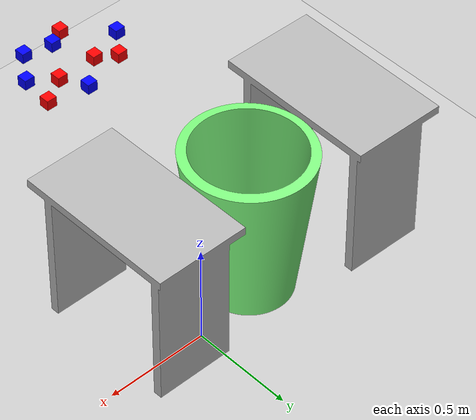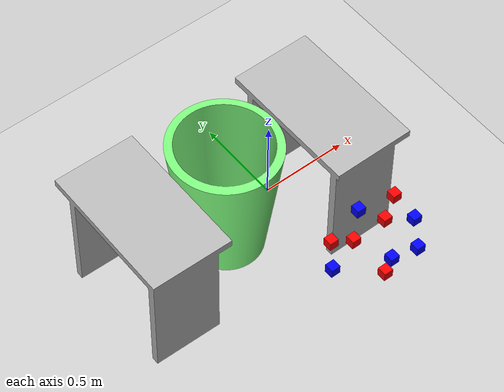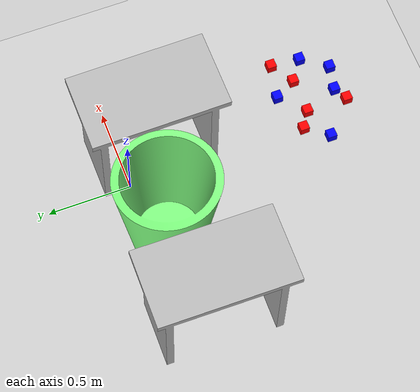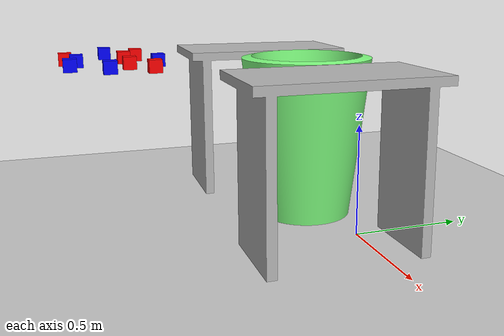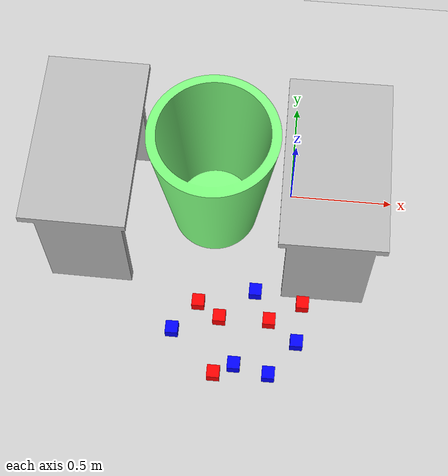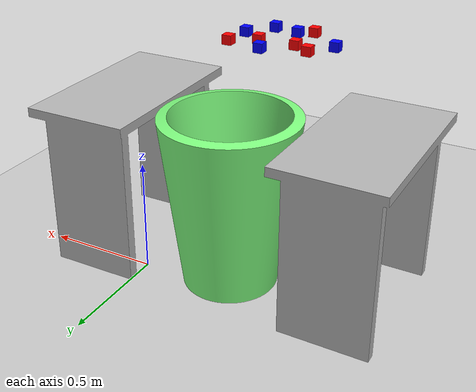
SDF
<sdf version="1.6">
 <world name="default">
  <light name="sun" type="directional">
   <pose>0 0 10 0 -0 0</pose>
   <diffuse>0.8 0.8 0.8 1</diffuse>
   <specular>0.1 0.1 0.1 1</specular>
   <attenuation>
    <range>1000</range>
    <constant>0.9</constant>
    <linear>0.01</linear>
    <quadratic>0.001</quadratic>
   </attenuation>
   <direction>-0.5 0.5 -1</direction>
  </light>
  <model name="ground_plane">
   <static>1</static>
   <link name="link">
    <collision name="collision">
     <geometry><plane><normal>0 0 1</normal><size>100 100</size></plane></geometry>
     <surface><friction><ode><mu>100</mu><mu2>50</mu2></ode></friction></surface>
    </collision>
    <visual name="visual">
     <cast_shadows>0</cast_shadows>
     <geometry><plane><normal>0 0 1</normal><size>100 100</size></plane></geometry>
     <material>
      <script><uri>file://media/materials/scripts/gazebo.material</uri><name>Gazebo/Grey</name></script>
     </material>
    </visual>
   </link>
  </model>
  <gravity>0 0 -9.8</gravity>
  <magnetic_field>6e-06 2.3e-05 -4.2e-05</magnetic_field>
  <atmosphere type="adiabatic"/>
  <physics name="default_physics" default="0" type="ode">
   <max_step_size>0.001</max_step_size>
   <real_time_factor>1</real_time_factor>
   <real_time_update_rate>1000</real_time_update_rate>
  </physics>
  <scene><ambient>0.4 0.4 0.4 1</ambient><background>0.7 0.7 0.7 1</background><shadows>1</shadows></scene>
  <spherical_coordinates>
   <surface_model>EARTH_WGS84</surface_model>
   <latitude_deg>0</latitude_deg>
   <longitude_deg>0</longitude_deg>
   <elevation>0</elevation>
   <heading_deg>0</heading_deg>
  </spherical_coordinates>
  <model name="wood_blue_0">
   <link name="link">
    <pose>0 0 0.05 0 -0 0</pose>
    <inertial>
     <mass>0.5167</mass>
     <inertia>
      <ixx>0.000861167</ixx>
      <ixy>0</ixy>
      <ixz>0</ixz>
      <iyy>0.000861167</iyy>
      <iyz>0</iyz>
      <izz>0.000861167</izz>
     </inertia>
    </inertial>
    <collision name="collision">
     <geometry><box><size>0.05 0.05 0.05</size></box></geometry>
     <surface>
      <contact>
       <poissons_ratio>0.347</poissons_ratio>
       <elastic_modulus>8.8e+09</elastic_modulus>
       <ode><kp>100000</kp><kd>100</kd><max_vel>100</max_vel><min_depth>0.001</min_depth></ode>
      </contact>
      <friction>
       <torsional>
        <coefficient>1</coefficient>
        <use_patch_radius>0</use_patch_radius>
        <surface_radius>0.01</surface_radius>
       </torsional>
      </friction>
     </surface>
    </collision>
    <visual name="visual">
     <geometry><box><size>0.05 0.05 0.05</size></box></geometry>
     <material><ambient>0 0 1 1</ambient></material>
    </visual>
   </link>
   <pose>-0.187523 -1.14371 0.748987 0 -0 0</pose>
  </model>
  <model name="red cube_0">
   <link name="link">
    <pose>0 0 0.05 0 -0 0</pose>
    <inertial>
     <mass>0.5167</mass>
     <inertia>
      <ixx>0.000861167</ixx>
      <ixy>0</ixy>
      <ixz>0</ixz>
      <iyy>0.000861167</iyy>
      <iyz>0</iyz>
      <izz>0.000861167</izz>
     </inertia>
    </inertial>
    <collision name="collision">
     <geometry><box><size>0.05 0.05 0.05</size></box></geometry>
     <surface>
      <contact>
       <poissons_ratio>0.347</poissons_ratio>
       <elastic_modulus>8.8e+09</elastic_modulus>
       <ode><kp>100000</kp><kd>100</kd><max_vel>100</max_vel><min_depth>0.001</min_depth></ode>
      </contact>
      <friction>
       <torsional>
        <coefficient>1</coefficient>
        <use_patch_radius>0</use_patch_radius>
        <surface_radius>0.01</surface_radius>
       </torsional>
      </friction>
     </surface>
    </collision>
    <visual name="visual">
     <geometry><box><size>0.05 0.05 0.05</size></box></geometry>
     <material><ambient>1 0 0 1</ambient></material>
    </visual>
   </link>
   <pose>-0.263384 -1.18515 0.748993 0 -9.7e-05 9e-06</pose>
  </model>
  <model name="red cube_0_clone">
   <link name="link">
    <pose>0 0 0.05 0 -0 0</pose>
    <inertial>
     <mass>0.5167</mass>
     <inertia>
      <ixx>0.000861167</ixx>
      <ixy>0</ixy>
      <ixz>0</ixz>
      <iyy>0.000861167</iyy>
      <iyz>0</iyz>
      <izz>0.000861167</izz>
     </inertia>
    </inertial>
    <collision name="collision">
     <geometry><box><size>0.05 0.05 0.05</size></box></geometry>
     <surface>
      <contact>
       <poissons_ratio>0.347</poissons_ratio>
       <elastic_modulus>8.8e+09</elastic_modulus>
       <ode><kp>100000</kp><kd>100</kd><max_vel>100</max_vel><min_depth>0.001</min_depth></ode>
      </contact>
      <friction>
       <torsional>
        <coefficient>1</coefficient>
        <use_patch_radius>0</use_patch_radius>
        <surface_radius>0.01</surface_radius>
       </torsional>
      </friction>
     </surface>
    </collision>
    <visual name="visual">
     <geometry><box><size>0.05 0.05 0.05</size></box></geometry>
     <material><ambient>1 0 0 1</ambient></material>
    </visual>
   </link>
   <pose>-0.063563 -0.951422 0.748987 0 -0 9e-06</pose>
  </model>
  <model name="red cube_0_clone_0">
   <link name="link">
    <pose>0 0 0.05 0 -0 0</pose>
    <inertial>
     <mass>0.5167</mass>
     <inertia>
      <ixx>0.000861167</ixx>
      <ixy>0</ixy>
      <ixz>0</ixz>
      <iyy>0.000861167</iyy>
      <iyz>0</iyz>
      <izz>0.000861167</izz>
     </inertia>
    </inertial>
    <collision name="collision">
     <geometry><box><size>0.05 0.05 0.05</size></box></geometry>
     <surface>
      <contact>
       <poissons_ratio>0.347</poissons_ratio>
       <elastic_modulus>8.8e+09</elastic_modulus>
       <ode><kp>100000</kp><kd>100</kd><max_vel>100</max_vel><min_depth>0.001</min_depth></ode>
      </contact>
      <friction>
       <torsional>
        <coefficient>1</coefficient>
        <use_patch_radius>0</use_patch_radius>
        <surface_radius>0.01</surface_radius>
       </torsional>
      </friction>
     </surface>
    </collision>
    <visual name="visual">
     <geometry><box><size>0.05 0.05 0.05</size></box></geometry>
     <material><ambient>1 0 0 1</ambient></material>
    </visual>
   </link>
   <pose>-0.350544 -0.897803 0.748987 0 -0 9e-06</pose>
  </model>
  <model name="red cube_0_clone_1">
   <link name="link">
    <pose>0 0 0.05 0 -0 0</pose>
    <inertial>
     <mass>0.5167</mass>
     <inertia>
      <ixx>0.000861167</ixx>
      <ixy>0</ixy>
      <ixz>0</ixz>
      <iyy>0.000861167</iyy>
      <iyz>0</iyz>
      <izz>0.000861167</izz>
     </inertia>
    </inertial>
    <collision name="collision">
     <geometry><box><size>0.05 0.05 0.05</size></box></geometry>
     <surface>
      <contact>
       <poissons_ratio>0.347</poissons_ratio>
       <elastic_modulus>8.8e+09</elastic_modulus>
       <ode><kp>100000</kp><kd>100</kd><max_vel>100</max_vel><min_depth>0.001</min_depth></ode>
      </contact>
      <friction>
       <torsional>
        <coefficient>1</coefficient>
        <use_patch_radius>0</use_patch_radius>
        <surface_radius>0.01</surface_radius>
       </torsional>
      </friction>
     </surface>
    </collision>
    <visual name="visual">
     <geometry><box><size>0.05 0.05 0.05</size></box></geometry>
     <material><ambient>1 0 0 1</ambient></material>
    </visual>
   </link>
   <pose>-0.261216 -0.955065 0.748993 0 -8.1e-05 9e-06</pose>
  </model>
  <model name="wood_blue_0_clone">
   <link name="link">
    <pose>0 0 0.05 0 -0 0</pose>
    <inertial>
     <mass>0.5167</mass>
     <inertia>
      <ixx>0.000861167</ixx>
      <ixy>0</ixy>
      <ixz>0</ixz>
      <iyy>0.000861167</iyy>
      <iyz>0</iyz>
      <izz>0.000861167</izz>
     </inertia>
    </inertial>
    <collision name="collision">
     <geometry><box><size>0.05 0.05 0.05</size></box></geometry>
     <surface>
      <contact>
       <poissons_ratio>0.347</poissons_ratio>
       <elastic_modulus>8.8e+09</elastic_modulus>
       <ode><kp>100000</kp><kd>100</kd><max_vel>100</max_vel><min_depth>0.001</min_depth></ode>
      </contact>
      <friction>
       <torsional>
        <coefficient>1</coefficient>
        <use_patch_radius>0</use_patch_radius>
        <surface_radius>0.01</surface_radius>
       </torsional>
      </friction>
     </surface>
    </collision>
    <visual name="visual">
     <geometry><box><size>0.05 0.05 0.05</size></box></geometry>
     <material><ambient>0 0 1 1</ambient></material>
    </visual>
   </link>
   <pose>0.050054 -1.03307 0.748987 0 -0 0</pose>
  </model>
  <model name="wood_blue_0_clone_0">
   <link name="link">
    <pose>0 0 0.05 0 -0 0</pose>
    <inertial>
     <mass>0.5167</mass>
     <inertia>
      <ixx>0.000861167</ixx>
      <ixy>0</ixy>
      <ixz>0</ixz>
      <iyy>0.000861167</iyy>
      <iyz>0</iyz>
      <izz>0.000861167</izz>
     </inertia>
    </inertial>
    <collision name="collision">
     <geometry><box><size>0.05 0.05 0.05</size></box></geometry>
     <surface>
      <contact>
       <poissons_ratio>0.347</poissons_ratio>
       <elastic_modulus>8.8e+09</elastic_modulus>
       <ode><kp>100000</kp><kd>100</kd><max_vel>100</max_vel><min_depth>0.001</min_depth></ode>
      </contact>
      <friction>
       <torsional>
        <coefficient>1</coefficient>
        <use_patch_radius>0</use_patch_radius>
        <surface_radius>0.01</surface_radius>
       </torsional>
      </friction>
     </surface>
    </collision>
    <visual name="visual">
     <geometry><box><size>0.05 0.05 0.05</size></box></geometry>
     <material><ambient>0 0 1 1</ambient></material>
    </visual>
   </link>
   <pose>-0.443136 -1.01964 0.748987 0 -0 0</pose>
  </model>
  <model name="wood_blue_0_clone_1">
   <link name="link">
    <pose>0 0 0.05 0 -0 0</pose>
    <inertial>
     <mass>0.5167</mass>
     <inertia>
      <ixx>0.000861167</ixx>
      <ixy>0</ixy>
      <ixz>0</ixz>
      <iyy>0.000861167</iyy>
      <iyz>0</iyz>
      <izz>0.000861167</izz>
     </inertia>
    </inertial>
    <collision name="collision">
     <geometry><box><size>0.05 0.05 0.05</size></box></geometry>
     <surface>
      <contact>
       <poissons_ratio>0.347</poissons_ratio>
       <elastic_modulus>8.8e+09</elastic_modulus>
       <ode><kp>100000</kp><kd>100</kd><max_vel>100</max_vel><min_depth>0.001</min_depth></ode>
      </contact>
      <friction>
       <torsional>
        <coefficient>1</coefficient>
        <use_patch_radius>0</use_patch_radius>
        <surface_radius>0.01</surface_radius>
       </torsional>
      </friction>
     </surface>
    </collision>
    <visual name="visual">
     <geometry><box><size>0.05 0.05 0.05</size></box></geometry>
     <material><ambient>0 0 1 1</ambient></material>
    </visual>
   </link>
   <pose>-0.050498 -1.17149 0.748987 0 -0 0</pose>
  </model>
  <model name="wood_blue_0_clone_2">
   <link name="link">
    <pose>0 0 0.05 0 -0 0</pose>
    <inertial>
     <mass>0.5167</mass>
     <inertia>
      <ixx>0.000861167</ixx>
      <ixy>0</ixy>
      <ixz>0</ixz>
      <iyy>0.000861167</iyy>
      <iyz>0</iyz>
      <izz>0.000861167</izz>
     </inertia>
    </inertial>
    <collision name="collision">
     <geometry><box><size>0.05 0.05 0.05</size></box></geometry>
     <surface>
      <contact>
       <poissons_ratio>0.347</poissons_ratio>
       <elastic_modulus>8.8e+09</elastic_modulus>
       <ode><kp>100000</kp><kd>100</kd><max_vel>100</max_vel><min_depth>0.001</min_depth></ode>
      </contact>
      <friction>
       <torsional>
        <coefficient>1</coefficient>
        <use_patch_radius>0</use_patch_radius>
        <surface_radius>0.01</surface_radius>
       </torsional>
      </friction>
     </surface>
    </collision>
    <visual name="visual">
     <geometry><box><size>0.05 0.05 0.05</size></box></geometry>
     <material><ambient>0 0 1 1</ambient></material>
    </visual>
   </link>
   <pose>-0.126917 -0.83285 0.748987 0 -0 0</pose>
  </model>
  <model name="red cube_0_clone_2">
   <link name="link">
    <pose>0 0 0.05 0 -0 0</pose>
    <inertial>
     <mass>0.5167</mass>
     <inertia>
      <ixx>0.000861167</ixx>
      <ixy>0</ixy>
      <ixz>0</ixz>
      <iyy>0.000861167</iyy>
      <iyz>0</iyz>
      <izz>0.000861167</izz>
     </inertia>
    </inertial>
    <collision name="collision">
     <geometry><box><size>0.05 0.05 0.05</size></box></geometry>
     <surface>
      <contact>
       <poissons_ratio>0.347</poissons_ratio>
       <elastic_modulus>8.8e+09</elastic_modulus>
       <ode><kp>100000</kp><kd>100</kd><max_vel>100</max_vel><min_depth>0.001</min_depth></ode>
      </contact>
      <friction>
       <torsional>
        <coefficient>1</coefficient>
        <use_patch_radius>0</use_patch_radius>
        <surface_radius>0.01</surface_radius>
       </torsional>
      </friction>
     </surface>
    </collision>
    <visual name="visual">
     <geometry><box><size>0.05 0.05 0.05</size></box></geometry>
     <material><ambient>1 0 0 1</ambient></material>
    </visual>
   </link>
   <pose>0.064076 -0.871391 0.748987 0 -0 9e-06</pose>
  </model>
  <model name="robot_stand">
   <static>1</static>
   <link name="link">
    <collision name="link_total">
     <pose>0 0 0.35 0 -0 0</pose>
     <geometry><box><size>0.913 0.4 0.82</size></box></geometry>
    </collision>
    <visual name="visual">
     <geometry><mesh><uri>model://robot_stand/meshes/robot_stand.dae</uri><scale>1 1 1</scale></mesh></geometry>
    </visual>
   </link>
   <pose>-0.919326 -0.176051 0 0 0 -1.58051</pose>
  </model>
  <model name="bin_1">
   <link name="link">
    <inertial>
     <pose>0 0 0.3683 0 -0 0</pose>
     <mass>4.83076</mass>
     <inertia>
      <ixx>0.281534</ixx>
      <ixy>0</ixy>
      <ixz>0</ixz>
      <iyy>0.281534</iyy>
      <iyz>0</iyz>
      <izz>0.126223</izz>
     </inertia>
    </inertial>
    <visual name="visual">
     <geometry><mesh><uri>model://bin_1/meshes/bin_final.dae</uri><scale>1 1 1</scale></mesh></geometry>
     <material><ambient>0.5 1 0.5 1</ambient></material>
    </visual>
    <collision name="collision">
     <geometry><mesh><uri>model://bin_1/meshes/bin_final.dae</uri><scale>1 1 1</scale></mesh></geometry>
    </collision>
   </link>
   <pose>-0.366676 -0.106312 -0.006514 -8e-06 -3e-06 0.001686</pose>
  </model>
  <model name="robot_stand_0">
   <static>1</static>
   <link name="link">
    <collision name="link_total">
     <pose>0 0 0.35 0 -0 0</pose>
     <geometry><box><size>0.913 0.4 0.82</size></box></geometry>
    </collision>
    <visual name="visual">
     <geometry><mesh><uri>model://robot_stand/meshes/robot_stand.dae</uri><scale>1 1 1</scale></mesh></geometry>
    </visual>
   </link>
   <pose>0.177558 -0.193805 0 0 0 -1.56462</pose>
  </model>
 </world>
</sdf>
